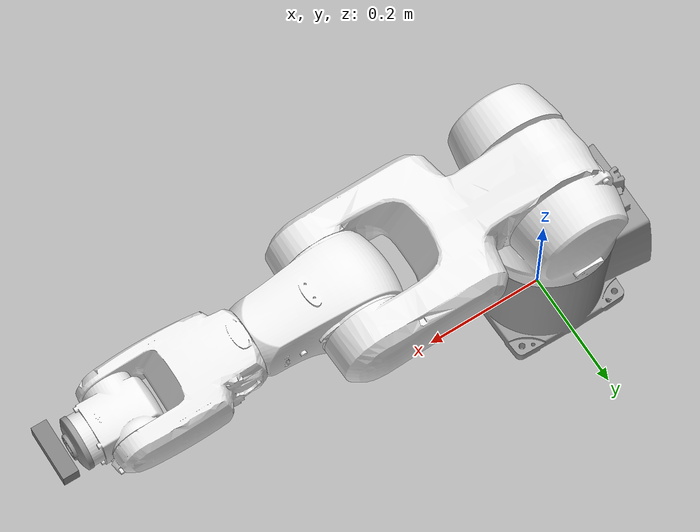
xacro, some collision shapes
<?xml version="1.0"?>
<robot name="kuka_d435" xmlns:xacro="http://wiki.ros.org/xacro">
  <xacro:property name="DEG2RAD" value="0.017453292519943295" />

  <!-- Camera URDF and Link -->
  <xacro:include filename="$(find kuka_d435)/urdf/d435.urdf.xacro" />

  <link name="tool" />
  <xacro:sensor_d435 name="camera" topics_ns="camera" parent="tool" publish_pointcloud="true">
    <origin xyz="0.020 0 0" rpy="0 0 0" />
  </xacro:sensor_d435>

    <link name="map"></link>

    <link name="base_link">
      <visual>
        <origin xyz="0 0 0" rpy="0 0 0" />
        <geometry>
          <mesh filename="package://kuka_d435/meshes/kr6/base_link.dae" />
        </geometry>
      </visual>
      <collision>
        <origin xyz="0 0 0" rpy="0 0 0" />
        <geometry>
          <mesh filename="package://kuka_d435/meshes/kr6/base_link.STL" />
        </geometry>
      </collision>
      <inertial>
        <origin xyz="0 0 0" rpy="0 0 0" />
        <mass value="0.009725" />
        <inertia ixx="0.000068" iyy="0.000083" izz="0.000071"
        ixy="-0.000000"  ixz="-0.000000" iyz="-0.000000" />
      </inertial>
    </link>

    <link name="link_1">
      <visual>
        <origin xyz="0 0 0" rpy="0 0 0" />
        <geometry>
          <mesh filename="package://kuka_d435/meshes/kr6/link_1.dae" />
        </geometry>
      </visual>
      <collision>
        <origin xyz="0 0 0" rpy="0 0 0" />
        <geometry>
          <mesh filename="package://kuka_d435/meshes/kr6/link_1.STL" />
        </geometry>
      </collision>
     <inertial>
        <origin xyz="0 0 0" rpy="0 0 0" />
        <mass value="0.005970" />
        <inertia ixx="0.000071" iyy="0.000046" izz="0.000054"
        ixy="-0.000000"  ixz="0.000005" iyz="-0.000000" />
      </inertial>
    </link>

    <link name="link_2">
      <visual>
        <origin xyz="0 0 0" rpy="0 0 0" />
        <geometry>
          <mesh filename="package://kuka_d435/meshes/kr6/link_2.dae" />
        </geometry>
      </visual>
      <collision>
        <origin xyz="0 0 0" rpy="0 0 0" />
        <geometry>
          <mesh filename="package://kuka_d435/meshes/kr6/link_2.STL" />
        </geometry>
      </collision>
      <inertial>
        <origin xyz="0 0 0" rpy="0 0 0" />
        <mass value="0.008265" />
        <inertia ixx="0.000050" iyy="0.000149" izz="0.000176"
        ixy="-0.000002"  ixz="-0.000001" iyz="0.000000" />
      </inertial>
    </link>

    <link name="link_3">
      <visual>
        <origin xyz="0 0 0" rpy="0 0 0" />
        <geometry>
          <mesh filename="package://kuka_d435/meshes/kr6/link_3.dae" />
        </geometry>
      </visual>
      <collision>
        <origin xyz="0 0 0" rpy="0 0 0" />
        <geometry>
          <mesh filename="package://kuka_d435/meshes/kr6/link_3.STL" />
        </geometry>
      </collision>
      <inertial>
        <origin xyz="0 0 0" rpy="0 0 0" />
        <mass value="0.003383" />
        <inertia ixx="0.000009" iyy="0.000017" izz="0.000016"
        ixy="-0.000000"  ixz="-0.000002" iyz="-0.000000" />
      </inertial>
    </link>

    <link name="link_4">
      <visual>
        <origin xyz="0 0 0" rpy="0 0 0" />
        <geometry>
          <mesh filename="package://kuka_d435/meshes/kr6/link_4.dae" />
        </geometry>
      </visual>
      <collision>
        <origin xyz="0 0 0" rpy="0 0 0" />
        <geometry>
          <mesh filename="package://kuka_d435/meshes/kr6/link_4.STL" />
        </geometry>
      </collision>
      <inertial>
        <origin xyz="0 0 0" rpy="0 0 0" />
        <mass value="0.002449" />
        <inertia ixx="0.000007" iyy="0.000011" izz="0.000014"
        ixy="-0.000001"  ixz="0.000000" iyz="0.000000" />
      </inertial>
    </link>

    <link name="link_5">
      <visual>
        <origin xyz="0 0 0" rpy="0 0 0" />
        <geometry>
          <mesh filename="package://kuka_d435/meshes/kr6/link_5.dae" />
        </geometry>
      </visual>
      <collision>
        <origin xyz="0 0 0" rpy="0 0 0" />
        <geometry>
          <mesh filename="package://kuka_d435/meshes/kr6/link_5.STL" />
        </geometry>
      </collision>
      <inertial>
        <origin xyz="0 0 0" rpy="0 0 0" />
        <mass value="0.000762" />
        <inertia ixx="0.000001" iyy="0.000001" izz="0.000001"
        ixy="-0.000000"  ixz="0.000000" iyz="0.000000" />
      </inertial>
    </link>

    <link name="link_6">
      <visual>
        <origin xyz="0 0 0" rpy="0 0 0" />
        <geometry>
          <mesh filename="package://kuka_d435/meshes/kr6/link_6.dae" />
        </geometry>
      </visual>
      <collision>
        <origin xyz="0 0 0" rpy="0 0 0" />
        <geometry>
          <mesh filename="package://kuka_d435/meshes/kr6/link_6.STL" />
        </geometry>
      </collision>
      <inertial>
        <origin xyz="0 0 0" rpy="0 0 0" />
        <mass value="0.000076" />
        <inertia ixx="0.000000" iyy="0.000000" izz="0.000000"
        ixy="0.000000"  ixz="0.000000" iyz="0.000000" />
      </inertial>
    </link>

    <joint name="joint_a1" type="revolute">
      <origin xyz="0 0 0.4" rpy="0 0 0"/>
      <parent link="base_link"/>
      <child link="link_1"/>
      <axis xyz="0 0 -1"/>
      <limit lower="${-170 * DEG2RAD}" upper="${170 * DEG2RAD}" effort="0" velocity="${360 * DEG2RAD}"/>
    </joint>

    <joint name="joint_a2" type="revolute">
      <origin xyz="0.025 0 0" rpy="0 0 0"/>
      <parent link="link_1"/>
      <child link="link_2"/>
      <axis xyz="0 1 0"/>
      <limit lower="${-190 * DEG2RAD}" upper="${45 * DEG2RAD}" effort="0" velocity="${300 * DEG2RAD}"/>
    </joint>

    <joint name="joint_a3" type="revolute">
      <origin xyz="0.335 0 0" rpy="0 0 0"/>
      <parent link="link_2"/>
      <child link="link_3"/>
      <axis xyz="0 1 0"/>
      <limit lower="${-120 * DEG2RAD}" upper="${156 * DEG2RAD}" effort="0" velocity="${360 * DEG2RAD}"/>
    </joint>

    <joint name="joint_a4" type="revolute">
      <origin xyz="0 0 0.025" rpy="0 0 0"/>
      <parent link="link_3"/>
      <child link="link_4"/>
      <axis xyz="-1 0 0"/>
      <limit lower="${-185 * DEG2RAD}" upper="${185 * DEG2RAD}" effort="0" velocity="${381 * DEG2RAD}"/>
    </joint>

    <joint name="joint_a5" type="revolute">
      <origin xyz="0.365 0 0" rpy="0 0 0"/>
      <parent link="link_4"/>
      <child link="link_5"/>
      <axis xyz="0 1 0"/>
      <limit lower="${-120 * DEG2RAD}" upper="${120 * DEG2RAD}" effort="0" velocity="${388 * DEG2RAD}"/>
    </joint>

    <joint name="joint_a6" type="revolute">
      <origin xyz="0.090 0 0" rpy="0 0 0"/>
      <parent link="link_5"/>
      <child link="link_6"/>
      <axis xyz="-1 0 0"/>
      <limit lower="${-350 * DEG2RAD}" upper="${350 * DEG2RAD}" effort="0" velocity="${615 * DEG2RAD}"/>
    </joint>

    <joint name="joint_a6-tool" type="fixed">
      <origin xyz="0 0 0" rpy="0 0 0"/>
      <parent link="link_6"/>
      <child link="tool"/>
      <origin xyz="0 0 0" rpy="0 ${90 * DEG2RAD} 0"/>
    </joint>

    <!-- ROS base_link to KUKA $ROBROOT coordinate system transform -->

    <joint name="map_joint" type="fixed">
      <parent link="map"/>
      <child link="base_link"/>
    </joint>

    <!--TRANSMISSION-->

    <transmission name="trans_a1">
      <type>transmission_interface/SimpleTransmission</type>
      <joint name="joint_a1">
        <hardwareInterface>hardware_interface/PositionJointInterface</hardwareInterface>
      </joint>
      <actuator name="joint_a1_motor">
        <hardwareInterface>hardware_interface/PositionJointInterface</hardwareInterface>
        <mechanicalReduction>1</mechanicalReduction>
      </actuator>
    </transmission>

    <transmission name="trans_a2">
      <type>transmission_interface/SimpleTransmission</type>
      <joint name="joint_a2">
        <hardwareInterface>hardware_interface/PositionJointInterface</hardwareInterface>
      </joint>
      <actuator name="joint_a2_motor">
        <hardwareInterface>hardware_interface/PositionJointInterface</hardwareInterface>
        <mechanicalReduction>1</mechanicalReduction>
      </actuator>
    </transmission>

    <transmission name="trans_a3">
      <type>transmission_interface/SimpleTransmission</type>
      <joint name="joint_a3">
        <hardwareInterface>hardware_interface/PositionJointInterface</hardwareInterface>
      </joint>
      <actuator name="joint_a3_motor">
        <hardwareInterface>hardware_interface/PositionJointInterface</hardwareInterface>
        <mechanicalReduction>1</mechanicalReduction>
      </actuator>
    </transmission>

    <transmission name="trans_a4">
      <type>transmission_interface/SimpleTransmission</type>
      <joint name="joint_a4">
        <hardwareInterface>hardware_interface/PositionJointInterface</hardwareInterface>
      </joint>
      <actuator name="joint_a4_motor">
        <hardwareInterface>hardware_interface/PositionJointInterface</hardwareInterface>
        <mechanicalReduction>1</mechanicalReduction>
      </actuator>
    </transmission>

    <transmission name="trans_a5">
      <type>transmission_interface/SimpleTransmission</type>
      <joint name="joint_a5">
        <hardwareInterface>hardware_interface/PositionJointInterface</hardwareInterface>
      </joint>
      <actuator name="joint_a5_motor">
        <hardwareInterface>hardware_interface/PositionJointInterface</hardwareInterface>
        <mechanicalReduction>1</mechanicalReduction>
      </actuator>
    </transmission>

    <transmission name="trans_a6">
      <type>transmission_interface/SimpleTransmission</type>
      <joint name="joint_a6">
        <hardwareInterface>hardware_interface/PositionJointInterface</hardwareInterface>
      </joint>
      <actuator name="joint_a6_motor">
        <hardwareInterface>hardware_interface/PositionJointInterface</hardwareInterface>
        <mechanicalReduction>1</mechanicalReduction>
      </actuator>
    </transmission>

    <!--CONTROLLER-->

    <gazebo>
      <plugin name="gazebo_ros_control" filename="libgazebo_ros_control.so">
        <robotSimType>gazebo_ros_control/DefaultRobotHWSim</robotSimType>
      </plugin>
    </gazebo>

    <gazebo>
      <plugin name="joint_state_publisher" filename="libgazebo_ros_joint_state_publisher.so" >
        <jointName>joint_a1, joint_a2, joint_a3, joint_a4, joint_a5, joint_a6</jointName>
      </plugin>
    </gazebo>

    <!-- Gazebo-specific link properties  -->
    <gazebo reference="base_link">
      <material>Gazebo/Gray</material>
      <turnGravityOff>true</turnGravityOff>
    </gazebo>
    <gazebo reference="link_1">
      <material>Gazebo/White</material>
      <turnGravityOff>true</turnGravityOff>
    </gazebo>
    <gazebo reference="link_2">
      <material>Gazebo/White</material>
      <turnGravityOff>true</turnGravityOff>
    </gazebo>
    <gazebo reference="link_3">
      <material>Gazebo/White</material>
      <turnGravityOff>true</turnGravityOff>
    </gazebo>
    <gazebo reference="link_4">
      <material>Gazebo/White</material>
      <turnGravityOff>true</turnGravityOff>
    </gazebo>
    <gazebo reference="link_5">
      <material>Gazebo/White</material>
      <turnGravityOff>true</turnGravityOff>
    </gazebo>
    <gazebo reference="link_6">
      <material>Gazebo/Gray</material>
      <turnGravityOff>true</turnGravityOff>
    </gazebo>

</robot>

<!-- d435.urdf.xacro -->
<robot xmlns:xacro="http://ros.org/wiki/xacro">
  <!--File includes-->
  <xacro:include filename="$(find kuka_d435)/urdf/d435.gazebo.xacro"/>

  <xacro:macro name="sensor_d435" params="name:=camera topics_ns:=camera parent *origin publish_pointcloud:=true">
    <xacro:property name="M_PI" value="3.1415926535897931" />

    <!-- The following values are approximate, and the camera node
     publishing TF values with actual calibrated camera extrinsic values -->
    <xacro:property name="d435_cam_depth_to_left_ir_offset" value="0.0"/>
    <xacro:property name="d435_cam_depth_to_right_ir_offset" value="-0.050"/>
    <xacro:property name="d435_cam_depth_to_color_offset" value="0.015"/>

    <!-- The following values model the aluminum peripherial case for the
    D435 camera, with the camera joint represented by the actual
    peripherial camera tripod mount -->
    <xacro:property name="d435_cam_width" value="0.090"/>
    <xacro:property name="d435_cam_height" value="0.025"/>
    <xacro:property name="d435_cam_depth" value="0.02505"/>
    <xacro:property name="d435_cam_mount_from_center_offset" value="0.0149"/>

    <!-- The following offset is relative the the physical D435 camera peripherial
    camera tripod mount -->
    <xacro:property name="d435_cam_depth_px" value="${d435_cam_mount_from_center_offset}"/>
    <xacro:property name="d435_cam_depth_py" value="0.0175"/>
    <xacro:property name="d435_cam_depth_pz" value="${d435_cam_height/2}"/>

    <material name="${name}_aluminum">
    <color rgba="0.5 0.5 0.5 1"/>
    </material>

    <!-- camera body, with origin at bottom screw mount -->
    <joint name="${name}_joint" type="fixed">
      <xacro:insert_block name="origin" />
      <parent link="${parent}"/>
      <child link="${name}_bottom_screw_frame" />
    </joint>
    <link name="${name}_bottom_screw_frame"/>

    <joint name="${name}_link_joint" type="fixed">
      <origin xyz="0 ${d435_cam_depth_py} ${d435_cam_depth_pz}" rpy="0 0 0"/>
      <parent link="${name}_bottom_screw_frame"/>
      <child link="${name}_link" />
    </joint>

    <link name="${name}_link">
      <visual>
      <origin xyz="${d435_cam_mount_from_center_offset} ${-d435_cam_depth_py} 0" rpy="${M_PI/2} 0 ${M_PI/2}"/>
        <geometry>
          <mesh filename="package://kuka_d435/meshes/d435/d435.dae" />
        </geometry>
        <material name="${name}_aluminum"/>
      </visual>
      <collision>
        <origin xyz="0 ${-d435_cam_depth_py} 0" rpy="0 0 0"/>
        <geometry>
        <box size="${d435_cam_depth} ${d435_cam_width} ${d435_cam_height}"/>
        </geometry>
      </collision>
      <inertial>
        <!-- The following are not reliable values, and should not be used for modeling -->
        <mass value="0.564" />
        <origin xyz="0 0 0" />
        <inertia ixx="0.003881243" ixy="0.0" ixz="0.0" iyy="0.000498940" iyz="0.0" izz="0.003879257" />
      </inertial>
    </link>

    <!-- camera depth joints and links -->
    <joint name="${name}_depth_joint" type="fixed">
      <origin xyz="0 0 0" rpy="0 0 0"/>
      <parent link="${name}_link"/>
      <child link="${name}_depth_frame" />
    </joint>
    <link name="${name}_depth_frame"/>

    <joint name="${name}_depth_optical_joint" type="fixed">
      <origin xyz="0 0 0" rpy="${-M_PI/2} 0 ${-M_PI/2}" />
      <parent link="${name}_depth_frame" />
      <child link="${name}_depth_optical_frame" />
    </joint>
    <link name="${name}_depth_optical_frame"/>

    <!-- camera left IR joints and links -->
    <joint name="${name}_left_ir_joint" type="fixed">
      <origin xyz="0 ${d435_cam_depth_to_left_ir_offset} 0" rpy="0 0 0" />
      <parent link="${name}_depth_frame" />
      <child link="${name}_left_ir_frame" />
    </joint>
    <link name="${name}_left_ir_frame"/>

    <joint name="${name}_left_ir_optical_joint" type="fixed">
      <origin xyz="0 0 0" rpy="${-M_PI/2} 0 ${-M_PI/2}" />
      <parent link="${name}_left_ir_frame" />
      <child link="${name}_left_ir_optical_frame" />
    </joint>
    <link name="${name}_left_ir_optical_frame"/>

    <!-- camera right IR joints and links -->
    <joint name="${name}_right_ir_joint" type="fixed">
      <origin xyz="0 ${d435_cam_depth_to_right_ir_offset} 0" rpy="0 0 0" />
      <parent link="${name}_depth_frame" />
      <child link="${name}_right_ir_frame" />
    </joint>
    <link name="${name}_right_ir_frame"/>

    <joint name="${name}_right_ir_optical_joint" type="fixed">
      <origin xyz="0 0 0" rpy="${-M_PI/2} 0 ${-M_PI/2}" />
      <parent link="${name}_right_ir_frame" />
      <child link="${name}_right_ir_optical_frame" />
    </joint>
    <link name="${name}_right_ir_optical_frame"/>

    <!-- camera color joints and links -->
    <joint name="${name}_color_joint" type="fixed">
      <origin xyz="0 ${d435_cam_depth_to_color_offset} 0" rpy="0 0 0" />
      <parent link="${name}_depth_frame" />
      <child link="${name}_color_frame" />
    </joint>
    <link name="${name}_color_frame"/>

    <joint name="${name}_color_optical_joint" type="fixed">
      <origin xyz="0 0 0" rpy="${-M_PI/2} 0 ${-M_PI/2}" />
      <parent link="${name}_color_frame" />
      <child link="${name}_color_optical_frame" />
    </joint>
    <link name="${name}_color_optical_frame"/>

    <!-- Realsense Gazebo Plugin -->
    <xacro:gazebo_d435 camera_name="${name}" reference_link="${name}_link" topics_ns="${topics_ns}" depth_optical_frame="${name}_depth_optical_frame" color_optical_frame="${name}_color_optical_frame" infrared1_optical_frame="${name}_left_ir_optical_frame" infrared2_optical_frame="${name}_right_ir_optical_frame" publish_pointcloud="${publish_pointcloud}"/>

    <gazebo reference="${name}_bottom_screw_frame">
      <turnGravityOff>true</turnGravityOff>
    </gazebo>
    <gazebo reference="${name}_link">
      <turnGravityOff>true</turnGravityOff>
    </gazebo>
    <gazebo reference="${name}_depth_frame">
      <turnGravityOff>true</turnGravityOff>
    </gazebo>
    <gazebo reference="${name}_depth_optical_frame">
      <turnGravityOff>true</turnGravityOff>
    </gazebo>
    <gazebo reference="${name}_left_ir_frame">
      <turnGravityOff>true</turnGravityOff>
    </gazebo>
    <gazebo reference="${name}_left_ir_optical_frame">
      <turnGravityOff>true</turnGravityOff>
    </gazebo>
    <gazebo reference="${name}_right_ir_frame">
      <turnGravityOff>true</turnGravityOff>
    </gazebo>
    <gazebo reference="${name}_right_ir_optical_frame">
      <turnGravityOff>true</turnGravityOff>
    </gazebo>
    <gazebo reference="${name}_color_frame">
      <turnGravityOff>true</turnGravityOff>
    </gazebo>
    <gazebo reference="${name}_color_optical_frame">
      <turnGravityOff>true</turnGravityOff>
    </gazebo>

  </xacro:macro>
</robot>
